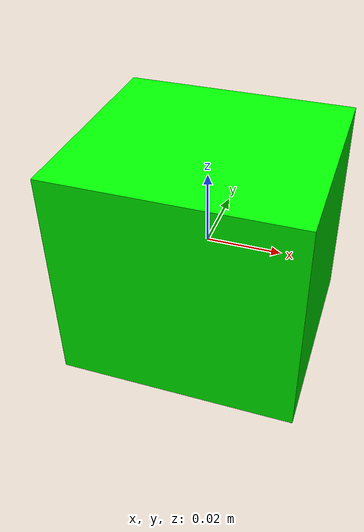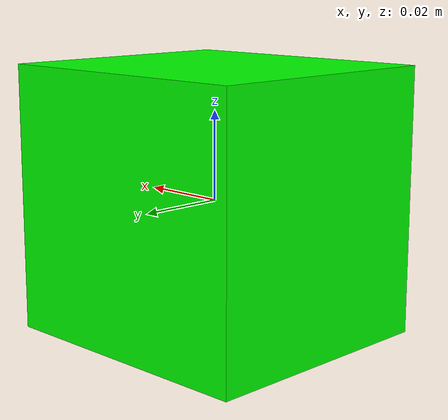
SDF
<?xml version="1.0" ?>
<sdf version="1.6">
  <model name="block_green">
    <static>false</static>
    <link name="link">
      <inertial>
        <mass>0.1</mass>
        <inertia>
          <ixx>5.763e-05</ixx>
          <ixy>0</ixy>
          <ixz>0</ixz>
          <iyy>6.331e-05</iyy>
          <iyz>0</iyz>
          <izz>6.119e-05</izz>
        </inertia>
      </inertial>
      <collision name="collision">
        <geometry>
          <box>
            <size>0.063346 0.05771 0.059872</size>
          </box>
        </geometry>
        <surface>
          <friction>
            <ode>
              <mu>100</mu>
              <mu2>100</mu2>
            </ode>
          </friction>
          <contact>
            <ode>
              <kp>1e+13</kp>
              <kd>1</kd>
              <min_depth>0</min_depth>
              <max_vel>0.01</max_vel>
            </ode>
          </contact>
        </surface>
      </collision>
      <visual name="visual">
        <geometry>
          <box>
            <size>0.063346 0.05771 0.059872</size>
          </box>
        </geometry>
        <material>
          <ambient>0 1 0 1</ambient>
          <diffuse>0 1 0 1</diffuse>
          <specular>0.1 0.1 0.1 1</specular>
        </material>
      </visual>
    </link>
  </model>
</sdf>
